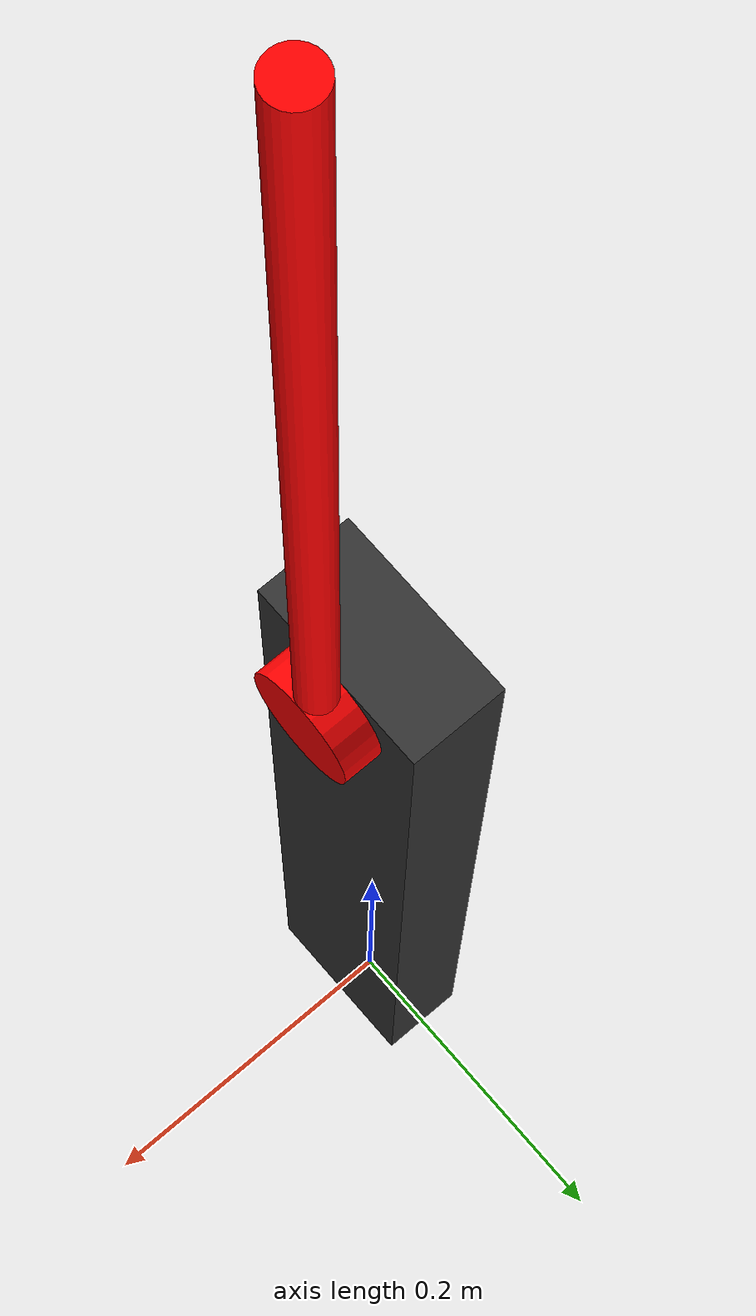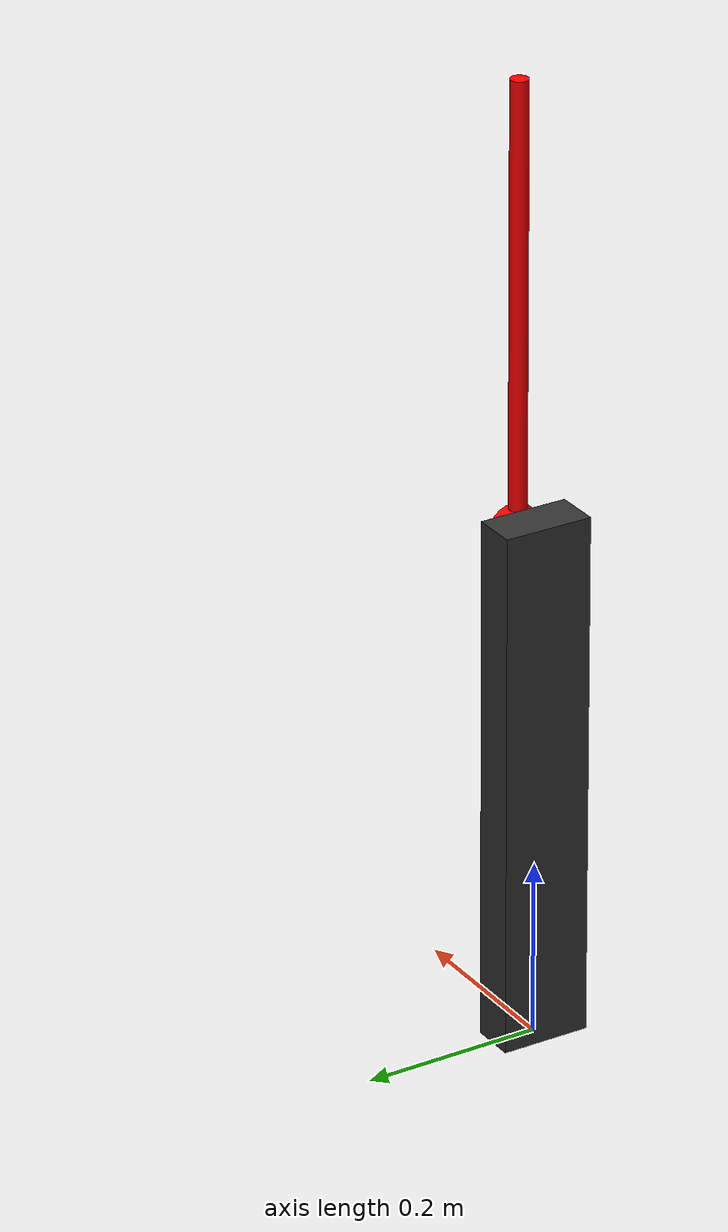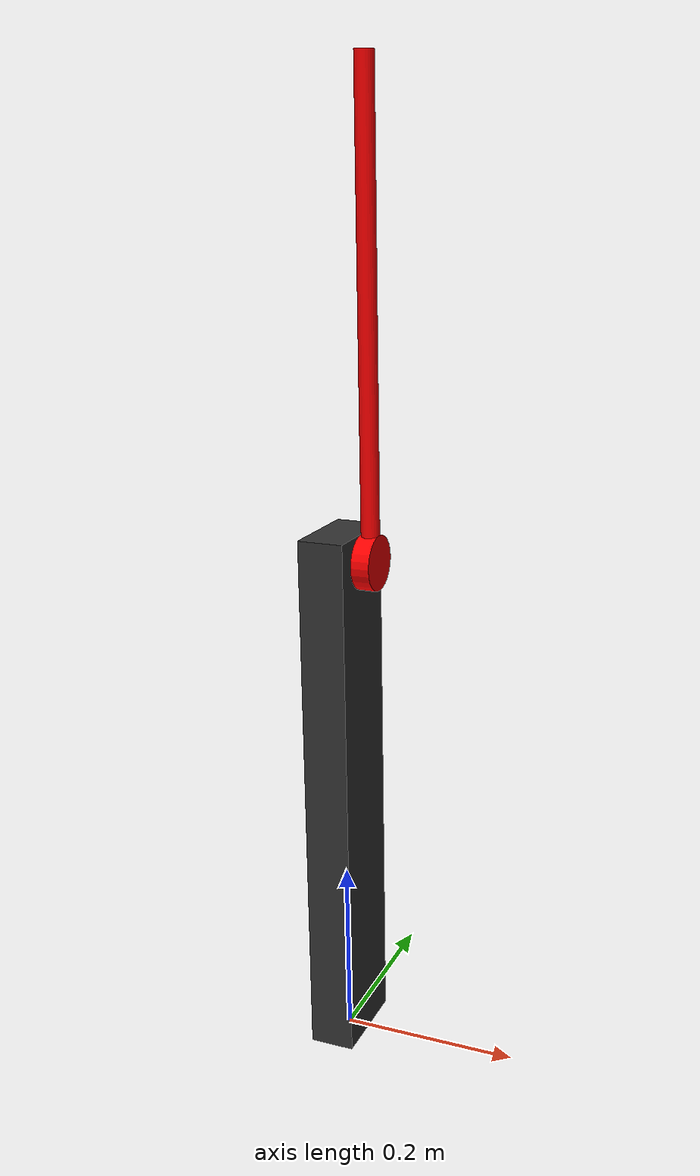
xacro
<?xml version='1.0' encoding='UTF-8'?>

<robot name="pendulum_xacro" xmlns:xacro="http://www.ros.org/wiki/xacro">
    <xacro:property name="pendulum_mass" value="1"/>
    <xacro:property name="pendulum_length" value="0.5"/>
    <xacro:property name="pendulum_radius" value="0.01"/>
    <xacro:property name="pendulum_circle_radius" value="0.03"/>
    <xacro:property name="theta_0" value="0.0"/>

    <xacro:property name="support_x" value="0.05"/>
    <xacro:property name="support_y" value="0.1"/>
    <xacro:property name="support_z" value="${pendulum_length*1.2}"/>
    <xacro:property name="support_mass" value="1000"/>

    <xacro:property name="rgba_black" value="0 0 0 1"/>
    <xacro:property name="rgba_white" value="1 1 1 1"/>
    <xacro:property name="rgba_grey" value="0.2 0.2 0.2 1"/>
    <xacro:property name="rgba_red" value="1 0 0 1"/>

    <xacro:macro name="cylinder_inertial_element"
                 params="mass length radius xyz rpy">
        <inertial>
            <origin xyz="${xyz}" rpy="${rpy}"/>
            <mass value="${mass}"/>
            <xacro:property name="ixx"
                            value="${1/12*mass*(3*radius*radius+length*length)}"/>
            <xacro:property name="iyy"
                            value="${1/12*mass*(3*radius*radius+length*length)}"/>
            <xacro:property name="izz" value="${0.5*mass*radius*radius}"/>
            <inertia ixx="${ixx}" ixy="0" ixz="0" iyy="${iyy}" iyz="0" izz="${izz}"/>
        </inertial>
    </xacro:macro>

    <xacro:macro name="box_inertial_element"
                 params="mass dimx dimy dimz xyz rpy">
        <inertial>
            <origin xyz="${xyz}" rpy="${rpy}"/>
            <mass value="${mass}"/>
            <xacro:property name="ixx"
                            value="${1/12*mass*(dimy*dimy+dimz*dimz)}"/>
            <xacro:property name="iyy"
                            value="${1/12*mass*(dimx*dimx+dimz*dimz)}"/>
            <xacro:property name="izz"
                            value="${1/12*mass*(dimx*dimx+dimy*dimy)}"/>
            <inertia ixx="${ixx}" ixy="0" ixz="0" iyy="${iyy}" iyz="0" izz="${izz}"/>
        </inertial>
    </xacro:macro>

    <xacro:macro name="mymaterial" params="name rgba">
        <material name="${name}">
            <color rgba="${rgba}"/>
        </material>
    </xacro:macro>

    <xacro:macro name="gzmaterial" params="reference rgba">
        <gazebo reference="${reference}">
            <visual>
                <material>
                    <diffuse>${rgba}</diffuse>
                </material>
            </visual>
        </gazebo>
    </xacro:macro>

    <!-- COLORS -->

    <xacro:gzmaterial reference="pendulum" rgba="${rgba_red}"/>
    <xacro:gzmaterial reference="pendulum_support" rgba="${rgba_grey}"/>

    <!-- LINKS -->

    <link name="support">
        <xacro:box_inertial_element mass="${support_mass}"
                                    dimx="${support_x}"
                                    dimy="${support_y}"
                                    dimz="${support_z}"
                                    xyz="0 0 ${support_z*0.5}"
                                    rpy="0 0 0"/>
        <visual>
            <geometry>
                <box size="${support_x} ${support_y} ${support_z}"/>
            </geometry>
            <origin xyz="0 0 ${support_z*0.5}" rpy="0 0 0"/>
            <xacro:mymaterial name="black" rgba="${rgba_grey}"/>
        </visual>
        <collision>
            <geometry>
                <box size="${support_x} ${support_y} ${support_z}"/>
            </geometry>
            <origin xyz="0 0 ${support_z*0.5}" rpy="0 0 0"/>
        </collision>
    </link>

    <link name="pendulum">
        <xacro:cylinder_inertial_element mass="${pendulum_mass}"
                                         length="${pendulum_length}"
                                         radius="${pendulum_radius}"
                                         xyz="0 0 ${pendulum_length/2}"
                                         rpy="0 0 0"/>
        <visual>
            <geometry>
                <cylinder length="${pendulum_length}" radius="${pendulum_radius}"/>
            </geometry>
            <origin xyz="0 0 ${pendulum_length/2}" rpy="0 0 0"/>
            <xacro:mymaterial name="red" rgba="${rgba_red}"/>
        </visual>
        <visual>
            <geometry>
                <cylinder length="${pendulum_radius*2}"
                          radius="${pendulum_circle_radius}"/>
            </geometry>
            <origin xyz="0 0 0" rpy="0 ${pi/2} 0"/>
            <xacro:mymaterial name="red" rgba="${rgba_red}"/>
        </visual>
        <collision>
            <geometry>
                <cylinder length="${pendulum_length}" radius="${pendulum_radius}"/>
            </geometry>
            <origin xyz="0 0 ${pendulum_length/2}" rpy="0 0 0"/>
        </collision>
    </link>

    <!-- JOINTS -->

    <joint name="pivot" type="continuous">
        <parent link="support"/>
        <child link="pendulum"/>
        <axis xyz="1 0 0"/>
        <origin xyz="${support_x/2+pendulum_radius} 0 ${support_z-pendulum_circle_radius}"
                rpy="${theta_0} 0 0"/>
        <limit lower="${-2*pi}" upper="${2*pi}" effort="500" velocity="10"/>
        <dynamics damping="0" friction="0"/>
    </joint>

</robot>
